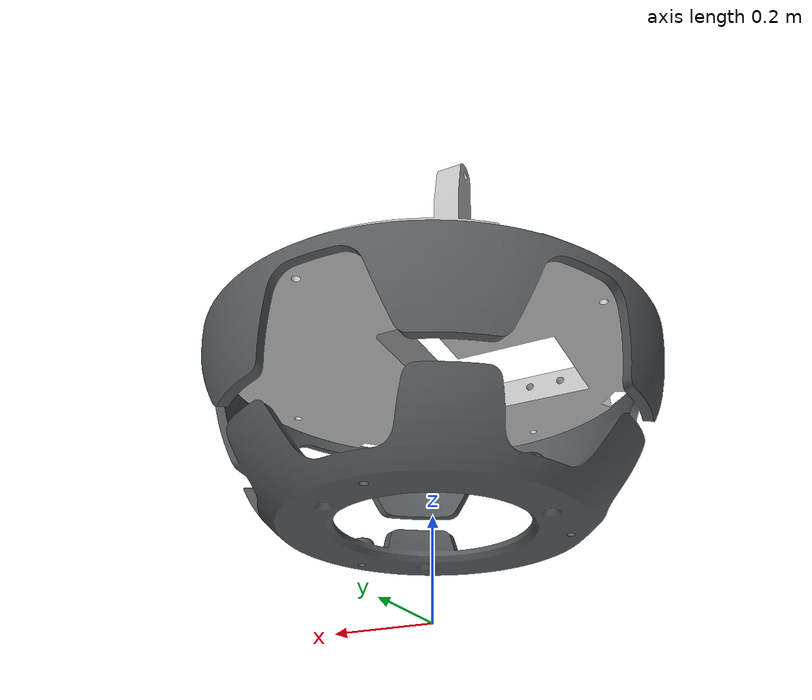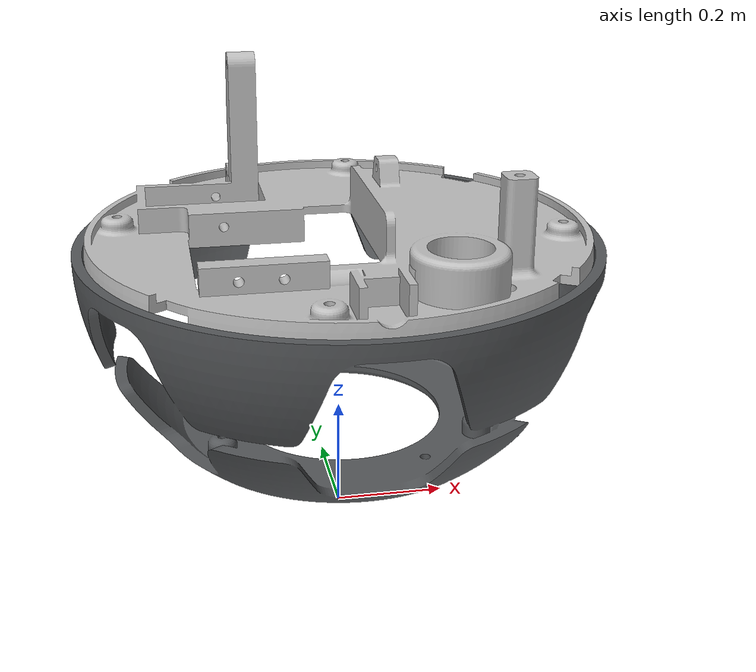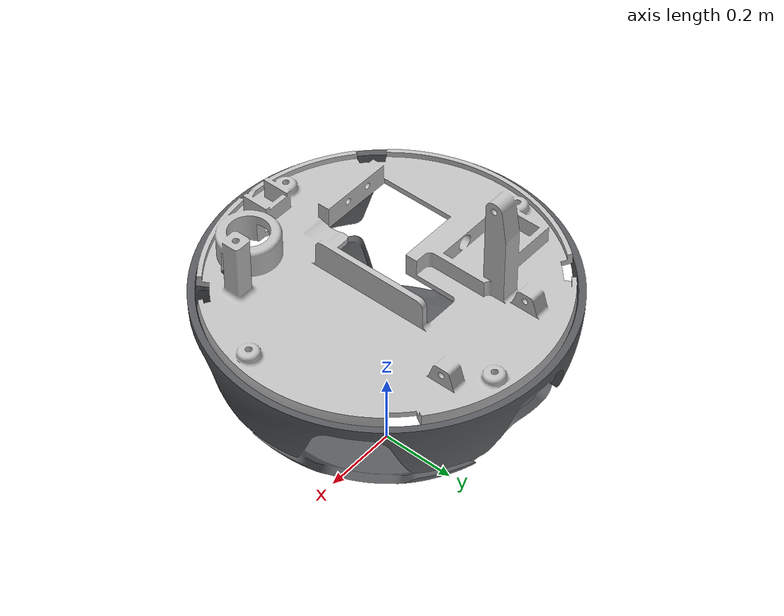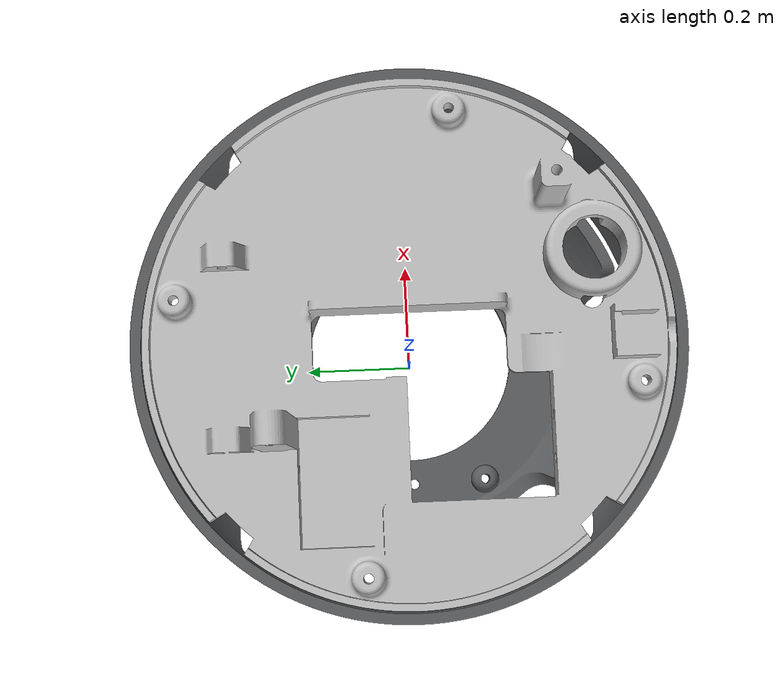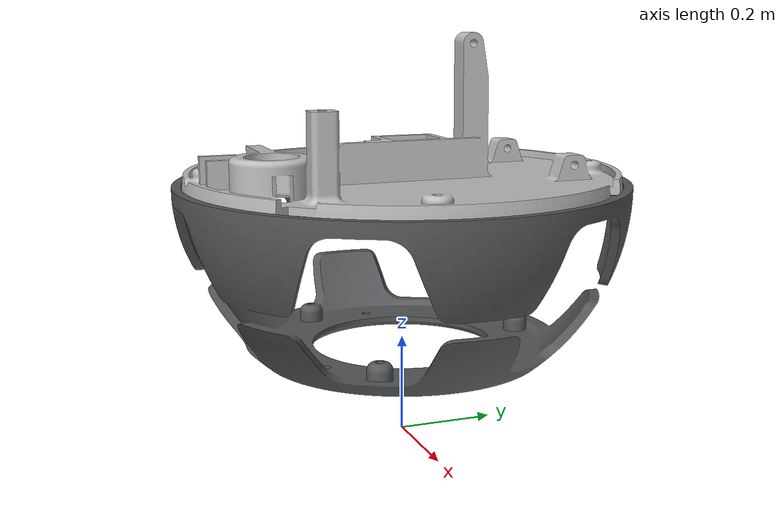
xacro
<?xml version="1.0" ?>
<robot name="xpider_shield_bottom_base_link" xmlns:xacro="http://ros.org/wiki/xacro">
<xacro:include filename="$(find xpider_resources)/urdf/common_materials.xacro"/>
<xacro:include filename="$(find xpider_resources)/urdf/common_constants.xacro"/>

  <xacro:include filename="$(find xpider_descriptions)/models/base_link.xacro"/>

  <joint name="base_joint" type="fixed">
		<parent link="base_link" />
		<child link="shield_bottom" />
		<origin xyz="0 0 0" rpy="0 0 0" />
	</joint>

  <xacro:include filename="$(find xpider_descriptions)/models/shield_bottom.xacro"/>

</robot>

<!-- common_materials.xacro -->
<robot xmlns:xacro="http://ros.org/wiki/xacro">
  <xacro:include filename="$(find xpider_resources)/urdf/common_colours.xacro"/>

  <xacro:macro name="material_xpider_yellow">
    <material name="">
      <color rgba="${color_xpider_yellow}"/>
    </material>
  </xacro:macro>

  <xacro:macro name="material_xpider_white">
    <material name="">
      <color rgba="${color_xpider_white}"/>
    </material>
  </xacro:macro>

  <xacro:macro name="material_xpider_black">
    <material name="">
      <color rgba="${color_xpider_black}"/>
    </material>
  </xacro:macro>

  <xacro:macro name="material_xpider_grey">
    <material name="">
      <color rgba="${color_xpider_grey}"/>
    </material>
  </xacro:macro>

  <xacro:macro name="material_xpider_greyish">
    <material name="">
      <color rgba="${color_xpider_greyish}"/>
    </material>
  </xacro:macro>

</robot>

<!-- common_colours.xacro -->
<robot xmlns:xacro="http://ros.org/wiki/xacro">

  <!-- RAL 1021 -->
  <xacro:property name="color_xpider_yellow"   value="0.96 0.76 0.13 1.0" />
  <!-- RAL 9002 -->
  <xacro:property name="color_xpider_white"    value="0.86 0.85 0.81 1.0" />
  <!-- RAL 7024 -->
  <xacro:property name="color_xpider_grey"     value="0.34 0.35 0.36 1.0" />

  <!-- approximations -->
  <xacro:property name="color_xpider_black"    value="0.15 0.15 0.15 1.0" />
  <xacro:property name="color_xpider_greyish"  value="0.75 0.75 0.75 1.0" />

</robot>

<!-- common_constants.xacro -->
<robot xmlns:xacro="http://ros.org/wiki/xacro">

  <!-- Pi, the ratio of a circle's circumference to its diameter -->
  <xacro:property name="m_pi" value="3.1415926535" />
  <!-- Pi divided by two -->
  <xacro:property name="m_pi_2" value="1.570796327" />
  <!-- 3Pi divided by two -->
  <xacro:property name="m_3_pi_2" value="2.35619449" />
  <!-- 3Pi divided by two -->
  <xacro:property name="m_2_pi_3" value="2.09439510239" />
  <!-- Pi divided by four -->
  <xacro:property name="m_pi_4" value="0.785398163" />
  <!-- Pi divided by three -->
  <xacro:property name="m_pi_3" value="1.0471975512" />
  <!-- Pi divided by six -->
  <xacro:property name="m_pi_6" value="0.52359877559" />
  <xacro:property name="m_5_pi_3" value="${m_2_pi_3}" />

  <!-- pi -->
  <xacro:property name="cos_m_pi" value="-1" />
  <xacro:property name="sin_m_pi" value="0" />

  <!-- pi/2 -->
  <xacro:property name="cos_m_pi_2" value="0" />
  <xacro:property name="sin_m_pi_2" value="1" />

  <!-- pi/6 -->
  <xacro:property name="cos_m_pi_6" value="0.86602540378" />
  <xacro:property name="sin_m_pi_6" value="0.5" />
  <xacro:property name="cos_m_5_pi_6" value="${-cos_m_pi_6}" />
  <xacro:property name="sin_m_5_pi_6" value="${sin_m_pi_6}" />
  <xacro:property name="cos_m_11_pi_6" value="0.86602540378" />
  <xacro:property name="sin_m_11_pi_6" value="-0.5" />

  <!-- pi/3 -->
  <xacro:property name="cos_m_pi_3" value="0.5" />
  <xacro:property name="sin_m_pi_3" value="0.86602540378" />
  <xacro:property name="cos_m_2_pi_3" value="${-cos_m_pi_3}" />
  <xacro:property name="sin_m_2_pi_3" value="${sin_m_pi_3}" />
  <xacro:property name="cos_m_4_pi_3" value="${-cos_m_pi_3}" />
  <xacro:property name="sin_m_4_pi_3" value="${-sin_m_pi_3}" />
  <xacro:property name="cos_m_5_pi_3" value="${cos_m_pi_3}" />
  <xacro:property name="sin_m_5_pi_3" value="${-sin_m_pi_3}" />

  <xacro:property name="ratio_stl" value="0.01006046568"/>

  <xacro:property name="height_base" value="${52*ratio_stl}"/>
  <xacro:property name="height_step" value="${3.97595909298*ratio_stl}"/>
  <xacro:property name="height_leg" value="${height_step/2 + 0*0.69579284127*ratio_stl}"/>
  <xacro:property name="base_link_to_step_height" value="${height_base-27.8317136509*ratio_stl}"/>
  <xacro:property name="base_link_to_step_up" value="${height_base - 4.96994886622*ratio_stl}"/>
  <xacro:property name="diameter_step" value="${47*ratio_stl}" />
  <xacro:property name="diameter_step_to_leg_123" value="${54*ratio_stl}" />
  <xacro:property name="diameter_step_up_to_leg" value="${31.5*ratio_stl}" />
  <xacro:property name="diameter_step_up" value="${26*ratio_stl}" />
  <xacro:property name="diameter_step_connect" value="${5.5*ratio_stl}" />
  <xacro:property name="height_step_connect_to_step_b" value="${3.99583888844*ratio_stl}" />
  <xacro:property name="diameter_step_connect_to_step_b" value="${4.17475704763*ratio_stl}" />
  <xacro:property name="height_base_link_to_step_c" value="${base_link_to_step_height-1.6*ratio_stl}"/>
  <xacro:property name="step_to_step_connect_height" value="${6.20249618505*ratio_stl}"/>
  <xacro:property name="diameter_step_c" value="${26*ratio_stl}" />

</robot>

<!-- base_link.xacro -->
<robot name="xpider_base_link" xmlns:xacro="http://ros.org/wiki/xacro">
<xacro:include filename="$(find xpider_resources)/urdf/common_materials.xacro"/>
<xacro:include filename="$(find xpider_resources)/urdf/common_constants.xacro"/>

    <link name="base_link">
    <visual>
      <origin xyz="0 0 ${height_base}" rpy="0 0 0"/>
      <geometry>
        <mesh filename="package://xpider_descriptions/meshes/base_link.stl" scale="${ratio_stl} ${ratio_stl} ${ratio_stl}"/>
      </geometry>
      <xacro:material_xpider_greyish />
      </visual>
      <collision>
        <origin xyz="0 0 ${height_base}" rpy="0 0 0"/>
        <geometry>
          <mesh filename="package://xpider_descriptions/meshes/base_link.stl" scale="${ratio_stl} ${ratio_stl} ${ratio_stl}"/>
        </geometry>
      </collision>
    </link>
</robot>

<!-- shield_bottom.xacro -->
<robot name="xpider_base_link" xmlns:xacro="http://ros.org/wiki/xacro">
<xacro:include filename="$(find xpider_resources)/urdf/common_materials.xacro"/>
<xacro:include filename="$(find xpider_resources)/urdf/common_constants.xacro"/>

    <link name="shield_bottom">
    <visual>
      <origin xyz="0 0 0.53" rpy="0 -${m_pi_2} 0"/>
      <geometry>
        <mesh filename="package://xpider_descriptions/meshes/shield_bottom.stl" scale="${ratio_stl} ${ratio_stl} ${ratio_stl}"/>
      </geometry>
      <xacro:material_xpider_grey />
      </visual>
      <collision>
        <origin xyz="0 0 0.53" rpy="0 -${m_pi_2} 0"/>
        <geometry>
          <mesh filename="package://xpider_descriptions/meshes/shield_bottom.stl" scale="${ratio_stl} ${ratio_stl} ${ratio_stl}"/>
        </geometry>
      </collision>
    </link>
</robot>
